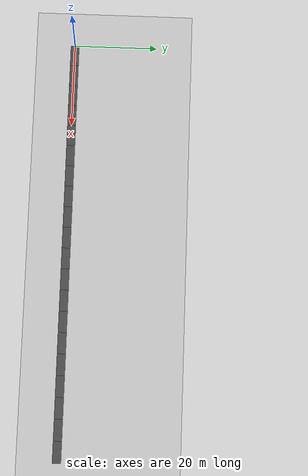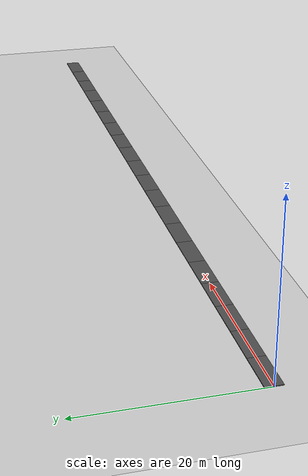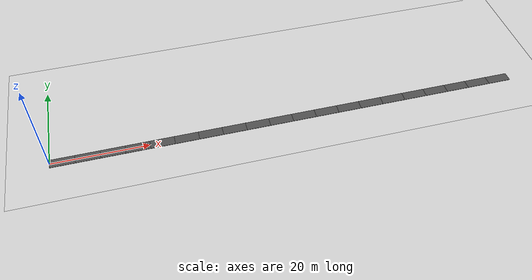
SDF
<?xml version="1.0" ?>
<sdf version="1.6">
  <world name="road_straight_w2">
    <include>
      <uri>model://ground_plane</uri>
    </include>
    <include>
      <uri>model://sun</uri>
    </include>

    <!-- 直線 100m 幅 2m -->
    <include>
      <uri>model://road_straight_100m_w2</uri>
    </include>

  </world>
</sdf>

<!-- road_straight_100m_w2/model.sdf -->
<sdf version="1.6">
  <model name="road_straight_100m_w2">
    <static>true</static>

    <link name="panel_000">
      <pose>2.500 0.000 0.050 0 0 0.000000</pose>
      <collision name="panel_000_collision">
        <geometry>
          <box>
            <size>5.000 2.000 0.100</size>
          </box>
        </geometry>
        <surface>
          <friction>
            <ode>
              <mu>1.0</mu>
              <mu2>1.0</mu2>
            </ode>
          </friction>
        </surface>
      </collision>
      <visual name="panel_000_visual">
        <geometry>
          <box>
            <size>5.000 2.000 0.100</size>
          </box>
        </geometry>
        <material>
          <ambient>0.2 0.2 0.2 1</ambient>
          <diffuse>0.3 0.3 0.3 1</diffuse>
        </material>
      </visual>
    </link>

    <link name="panel_001">
      <pose>7.500 0.000 0.050 0 0 0.000000</pose>
      <collision name="panel_001_collision">
        <geometry>
          <box>
            <size>5.000 2.000 0.100</size>
          </box>
        </geometry>
        <surface>
          <friction>
            <ode>
              <mu>1.0</mu>
              <mu2>1.0</mu2>
            </ode>
          </friction>
        </surface>
      </collision>
      <visual name="panel_001_visual">
        <geometry>
          <box>
            <size>5.000 2.000 0.100</size>
          </box>
        </geometry>
        <material>
          <ambient>0.2 0.2 0.2 1</ambient>
          <diffuse>0.3 0.3 0.3 1</diffuse>
        </material>
      </visual>
    </link>

    <link name="panel_002">
      <pose>12.500 0.000 0.050 0 0 0.000000</pose>
      <collision name="panel_002_collision">
        <geometry>
          <box>
            <size>5.000 2.000 0.100</size>
          </box>
        </geometry>
        <surface>
          <friction>
            <ode>
              <mu>1.0</mu>
              <mu2>1.0</mu2>
            </ode>
          </friction>
        </surface>
      </collision>
      <visual name="panel_002_visual">
        <geometry>
          <box>
            <size>5.000 2.000 0.100</size>
          </box>
        </geometry>
        <material>
          <ambient>0.2 0.2 0.2 1</ambient>
          <diffuse>0.3 0.3 0.3 1</diffuse>
        </material>
      </visual>
    </link>

    <link name="panel_003">
      <pose>17.500 0.000 0.050 0 0 0.000000</pose>
      <collision name="panel_003_collision">
        <geometry>
          <box>
            <size>5.000 2.000 0.100</size>
          </box>
        </geometry>
        <surface>
          <friction>
            <ode>
              <mu>1.0</mu>
              <mu2>1.0</mu2>
            </ode>
          </friction>
        </surface>
      </collision>
      <visual name="panel_003_visual">
        <geometry>
          <box>
            <size>5.000 2.000 0.100</size>
          </box>
        </geometry>
        <material>
          <ambient>0.2 0.2 0.2 1</ambient>
          <diffuse>0.3 0.3 0.3 1</diffuse>
        </material>
      </visual>
    </link>

    <link name="panel_004">
      <pose>22.500 0.000 0.050 0 0 0.000000</pose>
      <collision name="panel_004_collision">
        <geometry>
          <box>
            <size>5.000 2.000 0.100</size>
          </box>
        </geometry>
        <surface>
          <friction>
            <ode>
              <mu>1.0</mu>
              <mu2>1.0</mu2>
            </ode>
          </friction>
        </surface>
      </collision>
      <visual name="panel_004_visual">
        <geometry>
          <box>
            <size>5.000 2.000 0.100</size>
          </box>
        </geometry>
        <material>
          <ambient>0.2 0.2 0.2 1</ambient>
          <diffuse>0.3 0.3 0.3 1</diffuse>
        </material>
      </visual>
    </link>

    <link name="panel_005">
      <pose>27.500 0.000 0.050 0 0 0.000000</pose>
      <collision name="panel_005_collision">
        <geometry>
          <box>
            <size>5.000 2.000 0.100</size>
          </box>
        </geometry>
        <surface>
          <friction>
            <ode>
              <mu>1.0</mu>
              <mu2>1.0</mu2>
            </ode>
          </friction>
        </surface>
      </collision>
      <visual name="panel_005_visual">
        <geometry>
          <box>
            <size>5.000 2.000 0.100</size>
          </box>
        </geometry>
        <material>
          <ambient>0.2 0.2 0.2 1</ambient>
          <diffuse>0.3 0.3 0.3 1</diffuse>
        </material>
      </visual>
    </link>

    <link name="panel_006">
      <pose>32.500 0.000 0.050 0 0 0.000000</pose>
      <collision name="panel_006_collision">
        <geometry>
          <box>
            <size>5.000 2.000 0.100</size>
          </box>
        </geometry>
        <surface>
          <friction>
            <ode>
              <mu>1.0</mu>
              <mu2>1.0</mu2>
            </ode>
          </friction>
        </surface>
      </collision>
      <visual name="panel_006_visual">
        <geometry>
          <box>
            <size>5.000 2.000 0.100</size>
          </box>
        </geometry>
        <material>
          <ambient>0.2 0.2 0.2 1</ambient>
          <diffuse>0.3 0.3 0.3 1</diffuse>
        </material>
      </visual>
    </link>

    <link name="panel_007">
      <pose>37.500 0.000 0.050 0 0 0.000000</pose>
      <collision name="panel_007_collision">
        <geometry>
          <box>
            <size>5.000 2.000 0.100</size>
          </box>
        </geometry>
        <surface>
          <friction>
            <ode>
              <mu>1.0</mu>
              <mu2>1.0</mu2>
            </ode>
          </friction>
        </surface>
      </collision>
      <visual name="panel_007_visual">
        <geometry>
          <box>
            <size>5.000 2.000 0.100</size>
          </box>
        </geometry>
        <material>
          <ambient>0.2 0.2 0.2 1</ambient>
          <diffuse>0.3 0.3 0.3 1</diffuse>
        </material>
      </visual>
    </link>

    <link name="panel_008">
      <pose>42.500 0.000 0.050 0 0 0.000000</pose>
      <collision name="panel_008_collision">
        <geometry>
          <box>
            <size>5.000 2.000 0.100</size>
          </box>
        </geometry>
        <surface>
          <friction>
            <ode>
              <mu>1.0</mu>
              <mu2>1.0</mu2>
            </ode>
          </friction>
        </surface>
      </collision>
      <visual name="panel_008_visual">
        <geometry>
          <box>
            <size>5.000 2.000 0.100</size>
          </box>
        </geometry>
        <material>
          <ambient>0.2 0.2 0.2 1</ambient>
          <diffuse>0.3 0.3 0.3 1</diffuse>
        </material>
      </visual>
    </link>

    <link name="panel_009">
      <pose>47.500 0.000 0.050 0 0 0.000000</pose>
      <collision name="panel_009_collision">
        <geometry>
          <box>
            <size>5.000 2.000 0.100</size>
          </box>
        </geometry>
        <surface>
          <friction>
            <ode>
              <mu>1.0</mu>
              <mu2>1.0</mu2>
            </ode>
          </friction>
        </surface>
      </collision>
      <visual name="panel_009_visual">
        <geometry>
          <box>
            <size>5.000 2.000 0.100</size>
          </box>
        </geometry>
        <material>
          <ambient>0.2 0.2 0.2 1</ambient>
          <diffuse>0.3 0.3 0.3 1</diffuse>
        </material>
      </visual>
    </link>

    <link name="panel_010">
      <pose>52.500 0.000 0.050 0 0 0.000000</pose>
      <collision name="panel_010_collision">
        <geometry>
          <box>
            <size>5.000 2.000 0.100</size>
          </box>
        </geometry>
        <surface>
          <friction>
            <ode>
              <mu>1.0</mu>
              <mu2>1.0</mu2>
            </ode>
          </friction>
        </surface>
      </collision>
      <visual name="panel_010_visual">
        <geometry>
          <box>
            <size>5.000 2.000 0.100</size>
          </box>
        </geometry>
        <material>
          <ambient>0.2 0.2 0.2 1</ambient>
          <diffuse>0.3 0.3 0.3 1</diffuse>
        </material>
      </visual>
    </link>

    <link name="panel_011">
      <pose>57.500 0.000 0.050 0 0 0.000000</pose>
      <collision name="panel_011_collision">
        <geometry>
          <box>
            <size>5.000 2.000 0.100</size>
          </box>
        </geometry>
        <surface>
          <friction>
            <ode>
              <mu>1.0</mu>
              <mu2>1.0</mu2>
            </ode>
          </friction>
        </surface>
      </collision>
      <visual name="panel_011_visual">
        <geometry>
          <box>
            <size>5.000 2.000 0.100</size>
          </box>
        </geometry>
        <material>
          <ambient>0.2 0.2 0.2 1</ambient>
          <diffuse>0.3 0.3 0.3 1</diffuse>
        </material>
      </visual>
    </link>

    <link name="panel_012">
      <pose>62.500 0.000 0.050 0 0 0.000000</pose>
      <collision name="panel_012_collision">
        <geometry>
          <box>
            <size>5.000 2.000 0.100</size>
          </box>
        </geometry>
        <surface>
          <friction>
            <ode>
              <mu>1.0</mu>
              <mu2>1.0</mu2>
            </ode>
          </friction>
        </surface>
      </collision>
      <visual name="panel_012_visual">
        <geometry>
          <box>
            <size>5.000 2.000 0.100</size>
          </box>
        </geometry>
        <material>
          <ambient>0.2 0.2 0.2 1</ambient>
          <diffuse>0.3 0.3 0.3 1</diffuse>
        </material>
      </visual>
    </link>

    <link name="panel_013">
      <pose>67.500 0.000 0.050 0 0 0.000000</pose>
      <collision name="panel_013_collision">
        <geometry>
          <box>
            <size>5.000 2.000 0.100</size>
          </box>
        </geometry>
        <surface>
          <friction>
            <ode>
              <mu>1.0</mu>
              <mu2>1.0</mu2>
            </ode>
          </friction>
        </surface>
      </collision>
      <visual name="panel_013_visual">
        <geometry>
          <box>
            <size>5.000 2.000 0.100</size>
          </box>
        </geometry>
        <material>
          <ambient>0.2 0.2 0.2 1</ambient>
          <diffuse>0.3 0.3 0.3 1</diffuse>
        </material>
      </visual>
    </link>

    <link name="panel_014">
      <pose>72.500 0.000 0.050 0 0 0.000000</pose>
      <collision name="panel_014_collision">
        <geometry>
          <box>
            <size>5.000 2.000 0.100</size>
          </box>
        </geometry>
        <surface>
          <friction>
            <ode>
              <mu>1.0</mu>
              <mu2>1.0</mu2>
            </ode>
          </friction>
        </surface>
      </collision>
      <visual name="panel_014_visual">
        <geometry>
          <box>
            <size>5.000 2.000 0.100</size>
          </box>
        </geometry>
        <material>
          <ambient>0.2 0.2 0.2 1</ambient>
          <diffuse>0.3 0.3 0.3 1</diffuse>
        </material>
      </visual>
    </link>

    <link name="panel_015">
      <pose>77.500 0.000 0.050 0 0 0.000000</pose>
      <collision name="panel_015_collision">
        <geometry>
          <box>
            <size>5.000 2.000 0.100</size>
          </box>
        </geometry>
        <surface>
          <friction>
            <ode>
              <mu>1.0</mu>
              <mu2>1.0</mu2>
            </ode>
          </friction>
        </surface>
      </collision>
      <visual name="panel_015_visual">
        <geometry>
          <box>
            <size>5.000 2.000 0.100</size>
          </box>
        </geometry>
        <material>
          <ambient>0.2 0.2 0.2 1</ambient>
          <diffuse>0.3 0.3 0.3 1</diffuse>
        </material>
      </visual>
    </link>

    <link name="panel_016">
      <pose>82.500 0.000 0.050 0 0 0.000000</pose>
      <collision name="panel_016_collision">
        <geometry>
          <box>
            <size>5.000 2.000 0.100</size>
          </box>
        </geometry>
        <surface>
          <friction>
            <ode>
              <mu>1.0</mu>
              <mu2>1.0</mu2>
            </ode>
          </friction>
        </surface>
      </collision>
      <visual name="panel_016_visual">
        <geometry>
          <box>
            <size>5.000 2.000 0.100</size>
          </box>
        </geometry>
        <material>
          <ambient>0.2 0.2 0.2 1</ambient>
          <diffuse>0.3 0.3 0.3 1</diffuse>
        </material>
      </visual>
    </link>

    <link name="panel_017">
      <pose>87.500 0.000 0.050 0 0 0.000000</pose>
      <collision name="panel_017_collision">
        <geometry>
          <box>
            <size>5.000 2.000 0.100</size>
          </box>
        </geometry>
        <surface>
          <friction>
            <ode>
              <mu>1.0</mu>
              <mu2>1.0</mu2>
            </ode>
          </friction>
        </surface>
      </collision>
      <visual name="panel_017_visual">
        <geometry>
          <box>
            <size>5.000 2.000 0.100</size>
          </box>
        </geometry>
        <material>
          <ambient>0.2 0.2 0.2 1</ambient>
          <diffuse>0.3 0.3 0.3 1</diffuse>
        </material>
      </visual>
    </link>

    <link name="panel_018">
      <pose>92.500 0.000 0.050 0 0 0.000000</pose>
      <collision name="panel_018_collision">
        <geometry>
          <box>
            <size>5.000 2.000 0.100</size>
          </box>
        </geometry>
        <surface>
          <friction>
            <ode>
              <mu>1.0</mu>
              <mu2>1.0</mu2>
            </ode>
          </friction>
        </surface>
      </collision>
      <visual name="panel_018_visual">
        <geometry>
          <box>
            <size>5.000 2.000 0.100</size>
          </box>
        </geometry>
        <material>
          <ambient>0.2 0.2 0.2 1</ambient>
          <diffuse>0.3 0.3 0.3 1</diffuse>
        </material>
      </visual>
    </link>

    <link name="panel_019">
      <pose>97.500 0.000 0.050 0 0 0.000000</pose>
      <collision name="panel_019_collision">
        <geometry>
          <box>
            <size>5.000 2.000 0.100</size>
          </box>
        </geometry>
        <surface>
          <friction>
            <ode>
              <mu>1.0</mu>
              <mu2>1.0</mu2>
            </ode>
          </friction>
        </surface>
      </collision>
      <visual name="panel_019_visual">
        <geometry>
          <box>
            <size>5.000 2.000 0.100</size>
          </box>
        </geometry>
        <material>
          <ambient>0.2 0.2 0.2 1</ambient>
          <diffuse>0.3 0.3 0.3 1</diffuse>
        </material>
      </visual>
    </link>

  </model>
</sdf>
